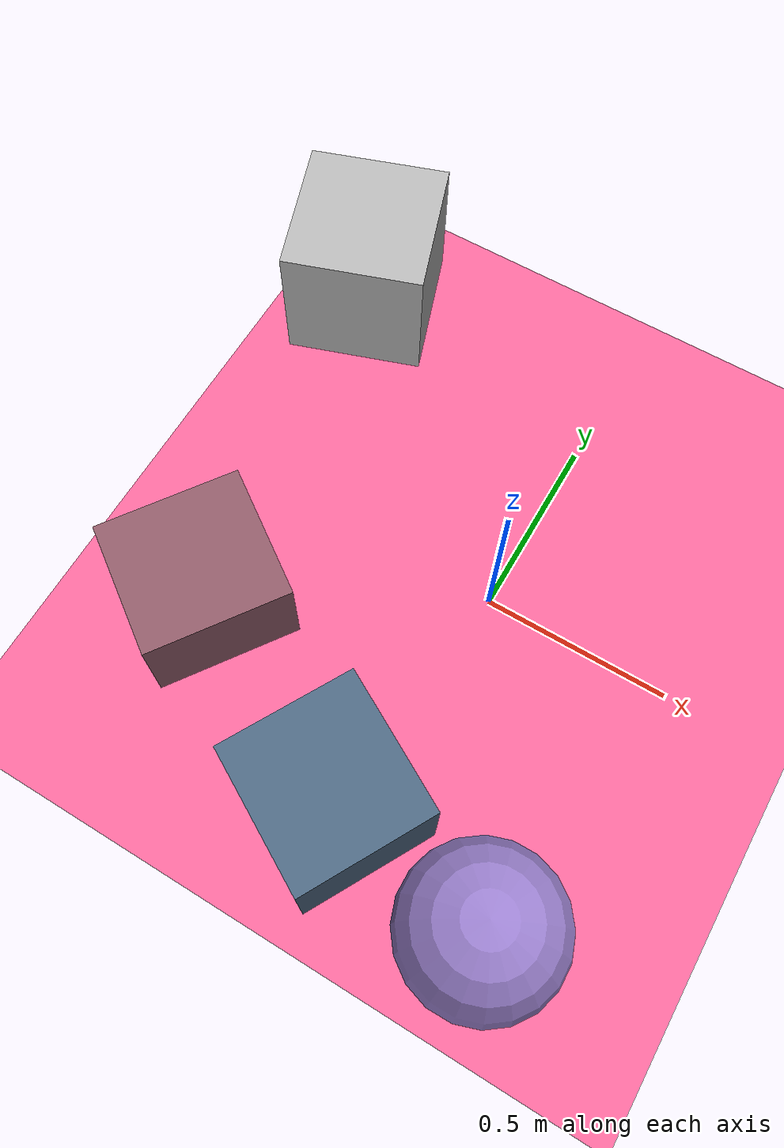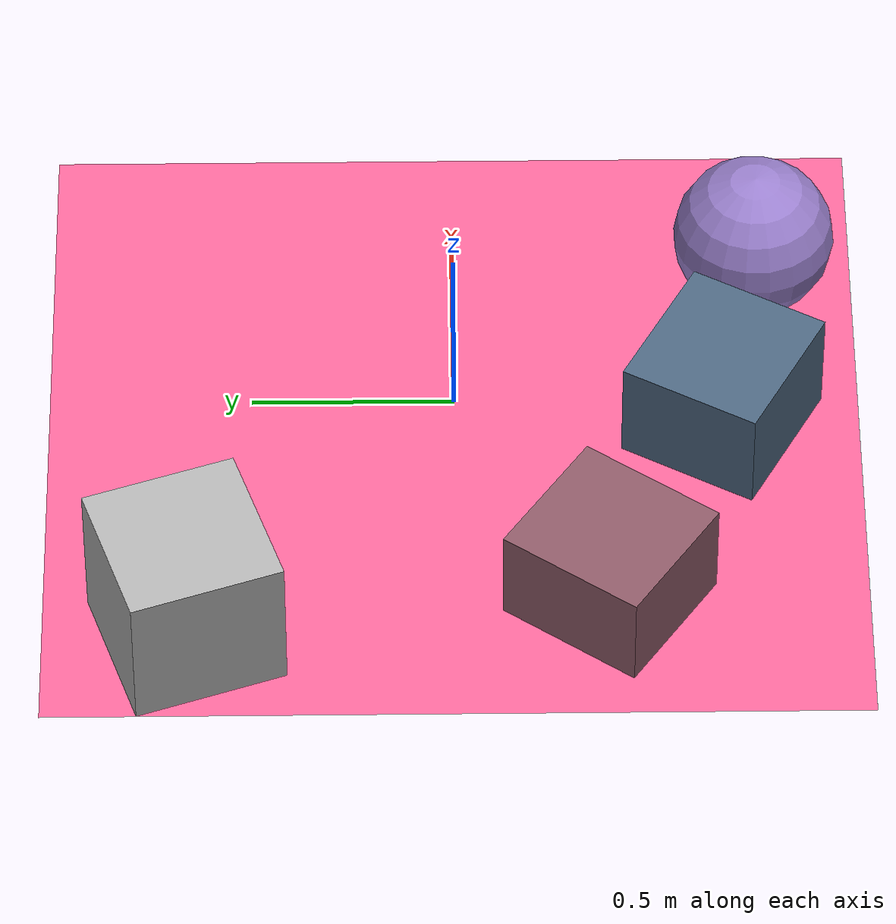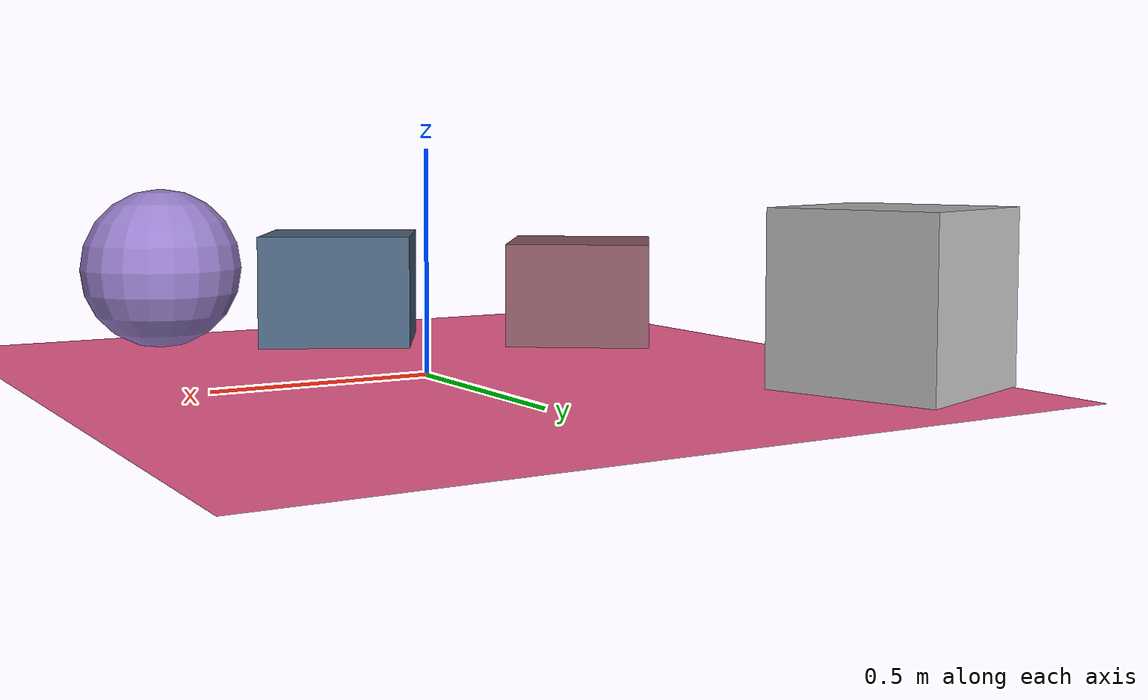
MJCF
<mujoco>
   <asset>
<texture type="skybox" builtin="gradient" rgb1="0.5 0.5 0.9" rgb2="0.9 1.0 0.9" width="500" height="500"/>
<texture name="checker_0" builtin="checker" rgb1="1.0 0.7 0.8" rgb2="0.2 0.3 0.8" width="500" height="500"/>
<texture name="flat_1" builtin="flat" rgb1="0.7 0.7 0.7" rgb2="0.7 0.7 0.7"  width="500" height="500"/>
<texture name="flat_2" builtin="flat" rgb1="0.3 0.4 0.5" rgb2="0.3 0.4 0.5"  width="500" height="500"/>
<texture name="checker_3" builtin="checker" rgb1="0.6 0.5 0.1" rgb2="0.5 0.2 0.7" width="500" height="500"/><material name="checker_0_mat" reflectance="0.7420266381900137" texrepeat="7 7" texture="checker_0" texuniform="false" />
<material name="flat_1_mat" reflectance="0.24190599107915745" texture="flat_1" texuniform="true"/>
<material name="flat_2_mat" reflectance="0.8018111449292804" texture="flat_2" texuniform="true"/>
<material name="checker_3_mat" reflectance="0.5989400846725487" texrepeat="3 3" texture="checker_3" texuniform="false" />
   </asset>

   <worldbody>
     <geom type="plane" size="1 1 0.1" rgba="1.0 0.4 0.6 1" />
<light pos="-0.9020861174842698 -0.7809049703730169 2" dir="0 0 -1" cutoff="90" diffuse="1 1 1" specular="1 1 1"/>
<geom type="sphere" pos="0.37 -0.75 0.2" size="0.2 0.2 0.2" material="checker_0_mat" euler="0 0 10" />
<geom type="box" pos="-0.76 0.65 0.19" size="0.19 0.19 0.19" material="flat_1_mat" euler="0 0 19" />
<geom type="box" pos="-0.08 -0.66 0.14" size="0.18 0.19 0.14" material="flat_2_mat" euler="0 0 61" />
<geom type="box" pos="-0.64 -0.37 0.13" size="0.19 0.18 0.13" material="checker_3_mat" euler="0 0 55" /><camera euler="60 0 180" fovy="60" name="camera1" pos="-0.2 -1.5 1"></camera>   </worldbody>
   <visual>
      <headlight diffuse="0.7 0.7 0.7"/>
   </visual>
</mujoco>
